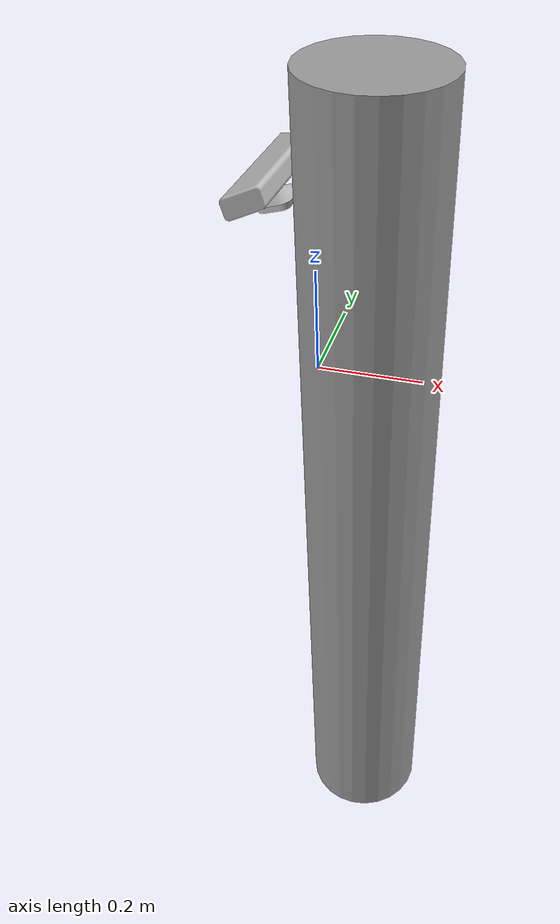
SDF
<?xml version='1.0'?>
<sdf version='1.7'>
  <model name='modelopc'>
    <link name='link_0'>
      <inertial>
        <mass>0.128755</mass>
        <inertia>
          <ixx>0.0366437</ixx>
          <ixy>0</ixy>
          <ixz>0</ixz>
          <iyy>0.0366437</iyy>
          <iyz>0</iyz>
          <izz>0.00112989</izz>
        </inertia>
        <pose>0 0 0 0 -0 0</pose>
      </inertial>
      <pose>0.101081 0.004661 -0.36379 0 -0 0</pose>
      <visual name='visual'>
        <pose>0 0 0 0 -0 0</pose>
        <geometry>
          <cylinder>
            <radius>0.13248</radius>
            <length>1.83373</length>
          </cylinder>
        </geometry>
        <material>
          <lighting>1</lighting>
          <script>
            <uri>file://media/materials/scripts/gazebo.material</uri>
            <name>Gazebo/Grey</name>
          </script>
          <shader type='pixel'/>
        </material>
        <transparency>0</transparency>
        <cast_shadows>1</cast_shadows>
      </visual>
      <collision name='collision'>
        <laser_retro>0</laser_retro>
        <max_contacts>10</max_contacts>
        <pose>0 0 0 0 -0 0</pose>
        <geometry>
          <cylinder>
            <radius>0.13248</radius>
            <length>1.83373</length>
          </cylinder>
        </geometry>
        <surface>
          <friction>
            <ode>
              <mu>1</mu>
              <mu2>1</mu2>
              <fdir1>0 0 0</fdir1>
              <slip1>0</slip1>
              <slip2>0</slip2>
            </ode>
            <torsional>
              <coefficient>1</coefficient>
              <patch_radius>0</patch_radius>
              <surface_radius>0</surface_radius>
              <use_patch_radius>1</use_patch_radius>
              <ode>
                <slip>0</slip>
              </ode>
            </torsional>
          </friction>
          <bounce>
            <restitution_coefficient>0</restitution_coefficient>
            <threshold>1e+06</threshold>
          </bounce>
          <contact>
            <collide_without_contact>0</collide_without_contact>
            <collide_without_contact_bitmask>1</collide_without_contact_bitmask>
            <collide_bitmask>1</collide_bitmask>
            <ode>
              <soft_cfm>0</soft_cfm>
              <soft_erp>0.2</soft_erp>
              <kp>1e+13</kp>
              <kd>1</kd>
              <max_vel>0.01</max_vel>
              <min_depth>0</min_depth>
            </ode>
            <bullet>
              <split_impulse>1</split_impulse>
              <split_impulse_penetration_threshold>-0.01</split_impulse_penetration_threshold>
              <soft_cfm>0</soft_cfm>
              <soft_erp>0.2</soft_erp>
              <kp>1e+13</kp>
              <kd>1</kd>
            </bullet>
          </contact>
        </surface>
      </collision>
    </link>
    <model name='kinect'>
      <pose>-0.101089 -0.004661 0.363788 -0 0.288492 3.09227</pose>
      <link name='link'>
        <inertial>
          <mass>0.1</mass>
        </inertial>
        <collision name='collision'>
          <geometry>
            <box>
              <size>0.073 0.276 0.072</size>
            </box>
          </geometry>
        </collision>
        <visual name='visual'>
          <geometry>
            <mesh>
              <uri>model://kinect/meshes/kinect.dae</uri>
            </mesh>
          </geometry>
        </visual>
        <sensor name='camera' type='depth'>
          <update_rate>20</update_rate>
          <camera>
            <horizontal_fov>1.0472</horizontal_fov>
            <image>
              <width>640</width>
              <height>480</height>
              <format>R8G8B8</format>
            </image>
            <clip>
              <near>0.05</near>
              <far>3</far>
            </clip>
          </camera>
          <plugin name='camera_plugin' filename='libgazebo_ros_openni_kinect.so'>
            <baseline>0.2</baseline>
            <alwaysOn>1</alwaysOn>
            <updateRate>20</updateRate>
            <cameraName>camera_ir</cameraName>
            <imageTopicName>/camera/color/image_raw</imageTopicName>
            <cameraInfoTopicName>/camera/color/camera_info</cameraInfoTopicName>
            <depthImageTopicName>/camera/depth/image_raw</depthImageTopicName>
            <depthImageCameraInfoTopicName>/camera/depth/camera_info</depthImageCameraInfoTopicName>
            <pointCloudTopicName>/camera/depth/points</pointCloudTopicName>
            <frameName>camera_link</frameName>
            <pointCloudCutoff>0.5</pointCloudCutoff>
            <pointCloudCutoffMax>3.0</pointCloudCutoffMax>
            <distortionK1>0</distortionK1>
            <distortionK2>0</distortionK2>
            <distortionK3>0</distortionK3>
            <distortionT1>0</distortionT1>
            <distortionT2>0</distortionT2>
            <CxPrime>0</CxPrime>
            <Cx>0</Cx>
            <Cy>0</Cy>
            <focalLength>0</focalLength>
            <hackBaseline>0</hackBaseline>
          </plugin>
        </sensor>
      </link>
    </model>
    <static>0</static>
    <allow_auto_disable>1</allow_auto_disable>
  </model>
</sdf>
